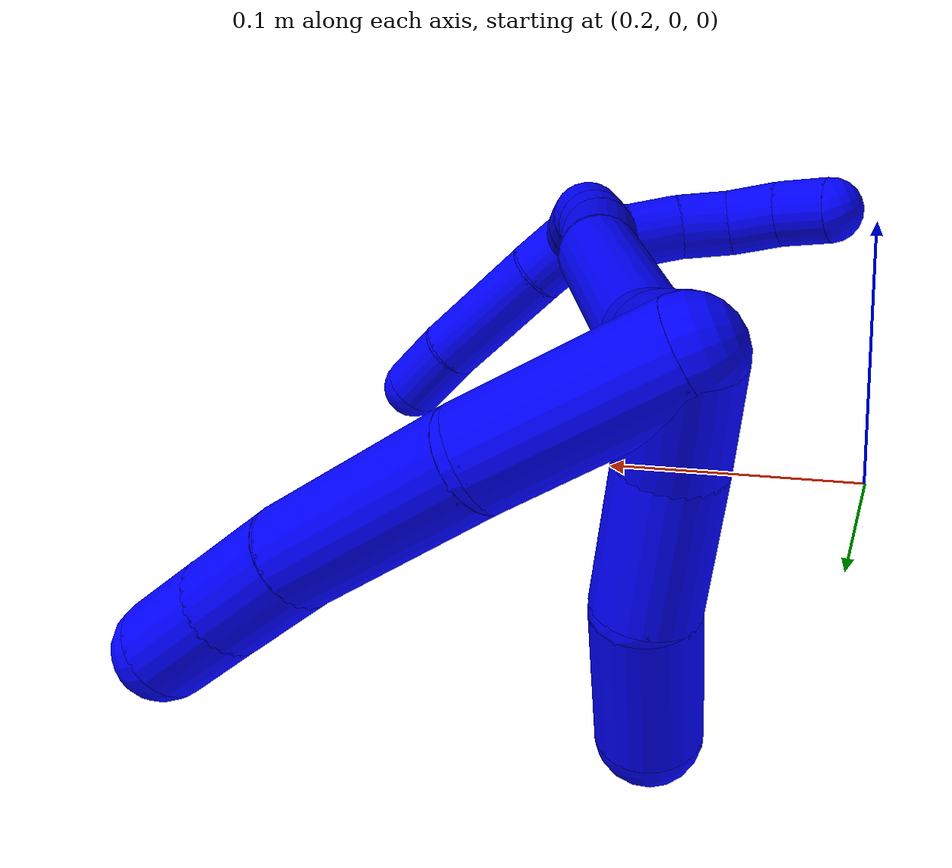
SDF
<sdf version="1.7">
 <world name="default">
  <model name="1">
   <static>0</static>
   <link name="1">
    <collision name="collision-cylinder-e_1_2_8">
     <pose>-0.001913 -0.002784 -0.024297 3.02752 -0.078078 -1.19988</pose>
     <geometry><cylinder><radius>0.0125</radius><length>0.049061</length></cylinder></geometry>
     <surface>
      <friction><ode><mu>1.16</mu><mu2>1.16</mu2><slip1>0</slip1><slip2>0</slip2></ode></friction>
      <contact><ode><kp>1e+06</kp><kd>1</kd><max_vel>0</max_vel><min_depth>0.001</min_depth></ode></contact>
     </surface>
    </collision>
    <visual name="visual-cylinder-e_1_2_8">
     <pose>-0.001913 -0.002784 -0.024297 3.02752 -0.078078 -1.19988</pose>
     <geometry><cylinder><radius>0.0125</radius><length>0.049061</length></cylinder></geometry>
     <material><ambient>0 0 1 1</ambient></material>
    </visual>
    <collision name="collision-cylinder-e_2_8_9">
     <pose>-0.006993 -0.014691 -0.073216 2.78672 -0.120001 -0.6465</pose>
     <geometry><cylinder><radius>0.0125</radius><length>0.052896</length></cylinder></geometry>
     <surface>
      <friction><ode><mu>1.16</mu><mu2>1.16</mu2><slip1>0</slip1><slip2>0</slip2></ode></friction>
      <contact><ode><kp>1e+06</kp><kd>1</kd><max_vel>0</max_vel><min_depth>0.001</min_depth></ode></contact>
     </surface>
    </collision>
    <visual name="visual-cylinder-e_2_8_9">
     <pose>-0.006993 -0.014691 -0.073216 2.78672 -0.120001 -0.6465</pose>
     <geometry><cylinder><radius>0.0125</radius><length>0.052896</length></cylinder></geometry>
     <material><ambient>0 0 1 1</ambient></material>
    </visual>
    <collision name="collision-cylinder-e_3_9_10">
     <pose>-0.012757 -0.028419 -0.109449 2.76414 -0.205064 -0.988256</pose>
     <geometry><cylinder><radius>0.0125</radius><length>0.025516</length></cylinder></geometry>
     <surface>
      <friction><ode><mu>1.16</mu><mu2>1.16</mu2><slip1>0</slip1><slip2>0</slip2></ode></friction>
      <contact><ode><kp>1e+06</kp><kd>1</kd><max_vel>0</max_vel><min_depth>0.001</min_depth></ode></contact>
     </surface>
    </collision>
    <visual name="visual-cylinder-e_3_9_10">
     <pose>-0.012757 -0.028419 -0.109449 2.76414 -0.205064 -0.988256</pose>
     <geometry><cylinder><radius>0.0125</radius><length>0.025516</length></cylinder></geometry>
     <material><ambient>0 0 1 1</ambient></material>
    </visual>
    <collision name="collision-cylinder-e_4_10_6">
     <pose>-0.017766 -0.036561 -0.131478 2.81415 -0.215697 -1.1603</pose>
     <geometry><cylinder><radius>0.0125</radius><length>0.022526</length></cylinder></geometry>
     <surface>
      <friction><ode><mu>1.16</mu><mu2>1.16</mu2><slip1>0</slip1><slip2>0</slip2></ode></friction>
      <contact><ode><kp>1e+06</kp><kd>1</kd><max_vel>0</max_vel><min_depth>0.001</min_depth></ode></contact>
     </surface>
    </collision>
    <visual name="visual-cylinder-e_4_10_6">
     <pose>-0.017766 -0.036561 -0.131478 2.81415 -0.215697 -1.1603</pose>
     <geometry><cylinder><radius>0.0125</radius><length>0.022526</length></cylinder></geometry>
     <material><ambient>0 0 1 1</ambient></material>
    </visual>
    <collision name="collision-cylinder-e_1_2_11">
     <pose>-0.009923 -0.006901 -0.006093 2.29412 -0.822853 -1.5376</pose>
     <geometry><cylinder><radius>0.0125</radius><length>0.027071</length></cylinder></geometry>
     <surface>
      <friction><ode><mu>1.16</mu><mu2>1.16</mu2><slip1>0</slip1><slip2>0</slip2></ode></friction>
      <contact><ode><kp>1e+06</kp><kd>1</kd><max_vel>0</max_vel><min_depth>0.001</min_depth></ode></contact>
     </surface>
    </collision>
    <visual name="visual-cylinder-e_1_2_11">
     <pose>-0.009923 -0.006901 -0.006093 2.29412 -0.822853 -1.5376</pose>
     <geometry><cylinder><radius>0.0125</radius><length>0.027071</length></cylinder></geometry>
     <material><ambient>0 0 1 1</ambient></material>
    </visual>
    <collision name="collision-cylinder-e_2_11_12">
     <pose>-0.033801 -0.019703 -0.021199 2.56185 -0.913427 -2.05045</pose>
     <geometry><cylinder><radius>0.0125</radius><length>0.035259</length></cylinder></geometry>
     <surface>
      <friction><ode><mu>1.16</mu><mu2>1.16</mu2><slip1>0</slip1><slip2>0</slip2></ode></friction>
      <contact><ode><kp>1e+06</kp><kd>1</kd><max_vel>0</max_vel><min_depth>0.001</min_depth></ode></contact>
     </surface>
    </collision>
    <visual name="visual-cylinder-e_2_11_12">
     <pose>-0.033801 -0.019703 -0.021199 2.56185 -0.913427 -2.05045</pose>
     <geometry><cylinder><radius>0.0125</radius><length>0.035259</length></cylinder></geometry>
     <material><ambient>0 0 1 1</ambient></material>
    </visual>
    <collision name="collision-cylinder-e_3_12_5">
     <pose>-0.062722 -0.035056 -0.03665 2.16886 -0.918219 -1.50359</pose>
     <geometry><cylinder><radius>0.0125</radius><length>0.03767</length></cylinder></geometry>
     <surface>
      <friction><ode><mu>1.16</mu><mu2>1.16</mu2><slip1>0</slip1><slip2>0</slip2></ode></friction>
      <contact><ode><kp>1e+06</kp><kd>1</kd><max_vel>0</max_vel><min_depth>0.001</min_depth></ode></contact>
     </surface>
    </collision>
    <visual name="visual-cylinder-e_3_12_5">
     <pose>-0.062722 -0.035056 -0.03665 2.16886 -0.918219 -1.50359</pose>
     <geometry><cylinder><radius>0.0125</radius><length>0.03767</length></cylinder></geometry>
     <material><ambient>0 0 1 1</ambient></material>
    </visual>
    <collision name="collision-cylinder-e_1_2_13">
     <pose>0.001744 -0.027111 -0.004319 1.72878 0.063452 0.074352</pose>
     <geometry><cylinder><radius>0.0125</radius><length>0.055017</length></cylinder></geometry>
     <surface>
      <friction><ode><mu>1.16</mu><mu2>1.16</mu2><slip1>0</slip1><slip2>0</slip2></ode></friction>
      <contact><ode><kp>1e+06</kp><kd>1</kd><max_vel>0</max_vel><min_depth>0.001</min_depth></ode></contact>
     </surface>
    </collision>
    <visual name="visual-cylinder-e_1_2_13">
     <pose>0.001744 -0.027111 -0.004319 1.72878 0.063452 0.074352</pose>
     <geometry><cylinder><radius>0.0125</radius><length>0.055017</length></cylinder></geometry>
     <material><ambient>0 0 1 1</ambient></material>
    </visual>
    <collision name="collision-cylinder-e_2_13_14">
     <pose>0.004691 -0.072206 -0.011495 1.72832 0.065958 0.077251</pose>
     <geometry><cylinder><radius>0.0125</radius><length>0.036496</length></cylinder></geometry>
     <surface>
      <friction><ode><mu>1.16</mu><mu2>1.16</mu2><slip1>0</slip1><slip2>0</slip2></ode></friction>
      <contact><ode><kp>1e+06</kp><kd>1</kd><max_vel>0</max_vel><min_depth>0.001</min_depth></ode></contact>
     </surface>
    </collision>
    <visual name="visual-cylinder-e_2_13_14">
     <pose>0.004691 -0.072206 -0.011495 1.72832 0.065958 0.077251</pose>
     <geometry><cylinder><radius>0.0125</radius><length>0.036496</length></cylinder></geometry>
     <material><ambient>0 0 1 1</ambient></material>
    </visual>
    <collision name="collision-cylinder-e_3_14_15">
     <pose>0.019963 -0.125635 -0.020031 1.72968 0.373512 0.436239</pose>
     <geometry><cylinder><radius>0.0125</radius><length>0.077113</length></cylinder></geometry>
     <surface>
      <friction><ode><mu>1.16</mu><mu2>1.16</mu2><slip1>0</slip1><slip2>0</slip2></ode></friction>
      <contact><ode><kp>1e+06</kp><kd>1</kd><max_vel>0</max_vel><min_depth>0.001</min_depth></ode></contact>
     </surface>
    </collision>
    <visual name="visual-cylinder-e_3_14_15">
     <pose>0.019963 -0.125635 -0.020031 1.72968 0.373512 0.436239</pose>
     <geometry><cylinder><radius>0.0125</radius><length>0.077113</length></cylinder></geometry>
     <material><ambient>0 0 1 1</ambient></material>
    </visual>
    <collision name="collision-cylinder-e_4_15_16">
     <pose>0.038739 -0.18586 -0.026982 1.62203 0.187485 0.197284</pose>
     <geometry><cylinder><radius>0.0125</radius><length>0.050509</length></cylinder></geometry>
     <surface>
      <friction><ode><mu>1.16</mu><mu2>1.16</mu2><slip1>0</slip1><slip2>0</slip2></ode></friction>
      <contact><ode><kp>1e+06</kp><kd>1</kd><max_vel>0</max_vel><min_depth>0.001</min_depth></ode></contact>
     </surface>
    </collision>
    <visual name="visual-cylinder-e_4_15_16">
     <pose>0.038739 -0.18586 -0.026982 1.62203 0.187485 0.197284</pose>
     <geometry><cylinder><radius>0.0125</radius><length>0.050509</length></cylinder></geometry>
     <material><ambient>0 0 1 1</ambient></material>
    </visual>
    <collision name="collision-cylinder-e_5_16_17">
     <pose>0.045986 -0.220297 -0.029457 1.69492 0.255289 0.288677</pose>
     <geometry><cylinder><radius>0.0125</radius><length>0.020117</length></cylinder></geometry>
     <surface>
      <friction><ode><mu>1.16</mu><mu2>1.16</mu2><slip1>0</slip1><slip2>0</slip2></ode></friction>
      <contact><ode><kp>1e+06</kp><kd>1</kd><max_vel>0</max_vel><min_depth>0.001</min_depth></ode></contact>
     </surface>
    </collision>
    <visual name="visual-cylinder-e_5_16_17">
     <pose>0.045986 -0.220297 -0.029457 1.69492 0.255289 0.288677</pose>
     <geometry><cylinder><radius>0.0125</radius><length>0.020117</length></cylinder></geometry>
     <material><ambient>0 0 1 1</ambient></material>
    </visual>
    <collision name="collision-cylinder-e_6_17_18">
     <pose>0.051205 -0.239721 -0.032138 1.72079 0.264814 0.307214</pose>
     <geometry><cylinder><radius>0.0125</radius><length>0.020467</length></cylinder></geometry>
     <surface>
      <friction><ode><mu>1.16</mu><mu2>1.16</mu2><slip1>0</slip1><slip2>0</slip2></ode></friction>
      <contact><ode><kp>1e+06</kp><kd>1</kd><max_vel>0</max_vel><min_depth>0.001</min_depth></ode></contact>
     </surface>
    </collision>
    <visual name="visual-cylinder-e_6_17_18">
     <pose>0.051205 -0.239721 -0.032138 1.72079 0.264814 0.307214</pose>
     <geometry><cylinder><radius>0.0125</radius><length>0.020467</length></cylinder></geometry>
     <material><ambient>0 0 1 1</ambient></material>
    </visual>
    <collision name="collision-cylinder-e_7_18_19">
     <pose>0.053534 -0.259222 -0.036307 1.84071 -0.034579 -0.045441</pose>
     <geometry><cylinder><radius>0.0125</radius><length>0.020214</length></cylinder></geometry>
     <surface>
      <friction><ode><mu>1.16</mu><mu2>1.16</mu2><slip1>0</slip1><slip2>0</slip2></ode></friction>
      <contact><ode><kp>1e+06</kp><kd>1</kd><max_vel>0</max_vel><min_depth>0.001</min_depth></ode></contact>
     </surface>
    </collision>
    <visual name="visual-cylinder-e_7_18_19">
     <pose>0.053534 -0.259222 -0.036307 1.84071 -0.034579 -0.045441</pose>
     <geometry><cylinder><radius>0.0125</radius><length>0.020214</length></cylinder></geometry>
     <material><ambient>0 0 1 1</ambient></material>
    </visual>
    <collision name="collision-cylinder-e_8_19_1">
     <pose>0.052372 -0.278627 -0.041551 1.82868 -0.08099 -0.105082</pose>
     <geometry><cylinder><radius>0.0125</radius><length>0.020066</length></cylinder></geometry>
     <surface>
      <friction><ode><mu>1.16</mu><mu2>1.16</mu2><slip1>0</slip1><slip2>0</slip2></ode></friction>
      <contact><ode><kp>1e+06</kp><kd>1</kd><max_vel>0</max_vel><min_depth>0.001</min_depth></ode></contact>
     </surface>
    </collision>
    <visual name="visual-cylinder-e_8_19_1">
     <pose>0.052372 -0.278627 -0.041551 1.82868 -0.08099 -0.105082</pose>
     <geometry><cylinder><radius>0.0125</radius><length>0.020066</length></cylinder></geometry>
     <material><ambient>0 0 1 1</ambient></material>
    </visual>
    <collision name="collision-cylinder-e_1_1_20">
     <pose>0.048452 -0.290526 -0.054448 2.92933 -0.285712 -1.86664</pose>
     <geometry><cylinder><radius>0.0125</radius><length>0.022063</length></cylinder></geometry>
     <surface>
      <friction><ode><mu>1.16</mu><mu2>1.16</mu2><slip1>0</slip1><slip2>0</slip2></ode></friction>
      <contact><ode><kp>1e+06</kp><kd>1</kd><max_vel>0</max_vel><min_depth>0.001</min_depth></ode></contact>
     </surface>
    </collision>
    <visual name="visual-cylinder-e_1_1_20">
     <pose>0.048452 -0.290526 -0.054448 2.92933 -0.285712 -1.86664</pose>
     <geometry><cylinder><radius>0.0125</radius><length>0.022063</length></cylinder></geometry>
     <material><ambient>0 0 1 1</ambient></material>
    </visual>
    <collision name="collision-cylinder-e_2_20_21">
     <pose>0.038033 -0.300518 -0.088229 2.82171 -0.287879 -1.46396</pose>
     <geometry><cylinder><radius>0.0125</radius><length>0.051491</length></cylinder></geometry>
     <surface>
      <friction><ode><mu>1.16</mu><mu2>1.16</mu2><slip1>0</slip1><slip2>0</slip2></ode></friction>
      <contact><ode><kp>1e+06</kp><kd>1</kd><max_vel>0</max_vel><min_depth>0.001</min_depth></ode></contact>
     </surface>
    </collision>
    <visual name="visual-cylinder-e_2_20_21">
     <pose>0.038033 -0.300518 -0.088229 2.82171 -0.287879 -1.46396</pose>
     <geometry><cylinder><radius>0.0125</radius><length>0.051491</length></cylinder></geometry>
     <material><ambient>0 0 1 1</ambient></material>
    </visual>
    <collision name="collision-cylinder-e_3_21_4">
     <pose>0.026478 -0.313448 -0.12307 2.7163 -0.326831 -1.30439</pose>
     <geometry><cylinder><radius>0.0125</radius><length>0.026446</length></cylinder></geometry>
     <surface>
      <friction><ode><mu>1.16</mu><mu2>1.16</mu2><slip1>0</slip1><slip2>0</slip2></ode></friction>
      <contact><ode><kp>1e+06</kp><kd>1</kd><max_vel>0</max_vel><min_depth>0.001</min_depth></ode></contact>
     </surface>
    </collision>
    <visual name="visual-cylinder-e_3_21_4">
     <pose>0.026478 -0.313448 -0.12307 2.7163 -0.326831 -1.30439</pose>
     <geometry><cylinder><radius>0.0125</radius><length>0.026446</length></cylinder></geometry>
     <material><ambient>0 0 1 1</ambient></material>
    </visual>
    <collision name="collision-cylinder-e_1_1_22">
     <pose>0.048051 -0.290622 -0.035031 0.250983 -0.358647 -0.045728</pose>
     <geometry><cylinder><radius>0.0125</radius><length>0.02</length></cylinder></geometry>
     <surface>
      <friction><ode><mu>1.16</mu><mu2>1.16</mu2><slip1>0</slip1><slip2>0</slip2></ode></friction>
      <contact><ode><kp>1e+06</kp><kd>1</kd><max_vel>0</max_vel><min_depth>0.001</min_depth></ode></contact>
     </surface>
    </collision>
    <visual name="visual-cylinder-e_1_1_22">
     <pose>0.048051 -0.290622 -0.035031 0.250983 -0.358647 -0.045728</pose>
     <geometry><cylinder><radius>0.0125</radius><length>0.02</length></cylinder></geometry>
     <material><ambient>0 0 1 1</ambient></material>
    </visual>
    <collision name="collision-cylinder-e_2_22_23">
     <pose>0.042765 -0.295601 -0.016484 0.273066 -0.178534 -0.024592</pose>
     <geometry><cylinder><radius>0.0125</radius><length>0.02</length></cylinder></geometry>
     <surface>
      <friction><ode><mu>1.16</mu><mu2>1.16</mu2><slip1>0</slip1><slip2>0</slip2></ode></friction>
      <contact><ode><kp>1e+06</kp><kd>1</kd><max_vel>0</max_vel><min_depth>0.001</min_depth></ode></contact>
     </surface>
    </collision>
    <visual name="visual-cylinder-e_2_22_23">
     <pose>0.042765 -0.295601 -0.016484 0.273066 -0.178534 -0.024592</pose>
     <geometry><cylinder><radius>0.0125</radius><length>0.02</length></cylinder></geometry>
     <material><ambient>0 0 1 1</ambient></material>
    </visual>
    <collision name="collision-cylinder-e_3_23_24">
     <pose>0.038024 -0.299253 0.00249 0.104696 -0.300981 -0.01589</pose>
     <geometry><cylinder><radius>0.0125</radius><length>0.02</length></cylinder></geometry>
     <surface>
      <friction><ode><mu>1.16</mu><mu2>1.16</mu2><slip1>0</slip1><slip2>0</slip2></ode></friction>
      <contact><ode><kp>1e+06</kp><kd>1</kd><max_vel>0</max_vel><min_depth>0.001</min_depth></ode></contact>
     </surface>
    </collision>
    <visual name="visual-cylinder-e_3_23_24">
     <pose>0.038024 -0.299253 0.00249 0.104696 -0.300981 -0.01589</pose>
     <geometry><cylinder><radius>0.0125</radius><length>0.02</length></cylinder></geometry>
     <material><ambient>0 0 1 1</ambient></material>
    </visual>
    <collision name="collision-cylinder-e_4_24_25">
     <pose>0.032899 -0.298339 0.021563 -0.197096 -0.217836 0.021622</pose>
     <geometry><cylinder><radius>0.0125</radius><length>0.02</length></cylinder></geometry>
     <surface>
      <friction><ode><mu>1.16</mu><mu2>1.16</mu2><slip1>0</slip1><slip2>0</slip2></ode></friction>
      <contact><ode><kp>1e+06</kp><kd>1</kd><max_vel>0</max_vel><min_depth>0.001</min_depth></ode></contact>
     </surface>
    </collision>
    <visual name="visual-cylinder-e_4_24_25">
     <pose>0.032899 -0.298339 0.021563 -0.197096 -0.217836 0.021622</pose>
     <geometry><cylinder><radius>0.0125</radius><length>0.02</length></cylinder></geometry>
     <material><ambient>0 0 1 1</ambient></material>
    </visual>
    <collision name="collision-cylinder-e_5_25_3">
     <pose>0.027695 -0.293242 0.040115 -0.340969 -0.309153 0.053638</pose>
     <geometry><cylinder><radius>0.0125</radius><length>0.02</length></cylinder></geometry>
     <surface>
      <friction><ode><mu>1.16</mu><mu2>1.16</mu2><slip1>0</slip1><slip2>0</slip2></ode></friction>
      <contact><ode><kp>1e+06</kp><kd>1</kd><max_vel>0</max_vel><min_depth>0.001</min_depth></ode></contact>
     </surface>
    </collision>
    <visual name="visual-cylinder-e_5_25_3">
     <pose>0.027695 -0.293242 0.040115 -0.340969 -0.309153 0.053638</pose>
     <geometry><cylinder><radius>0.0125</radius><length>0.02</length></cylinder></geometry>
     <material><ambient>0 0 1 1</ambient></material>
    </visual>
    <collision name="collision-sphere-3">
     <pose>0.024652 -0.290057 0.049093 0 -0 0</pose>
     <geometry><sphere><radius>0.0125</radius></sphere></geometry>
     <surface>
      <friction><ode><mu>1.16</mu><mu2>1.16</mu2><slip1>0</slip1><slip2>0</slip2></ode></friction>
      <contact><ode><kp>1e+06</kp><kd>1</kd><max_vel>0</max_vel><min_depth>0.001</min_depth></ode></contact>
     </surface>
    </collision>
    <visual name="visual-sphere-3">
     <pose>0.024652 -0.290057 0.049093 0 -0 0</pose>
     <geometry><sphere><radius>0.0125</radius></sphere></geometry>
     <material><ambient>0 0 1 1</ambient></material>
    </visual>
    <collision name="collision-sphere-25">
     <pose>0.030737 -0.296427 0.031138 0 -0 0</pose>
     <geometry><sphere><radius>0.0125</radius></sphere></geometry>
     <surface>
      <friction><ode><mu>1.16</mu><mu2>1.16</mu2><slip1>0</slip1><slip2>0</slip2></ode></friction>
      <contact><ode><kp>1e+06</kp><kd>1</kd><max_vel>0</max_vel><min_depth>0.001</min_depth></ode></contact>
     </surface>
    </collision>
    <visual name="visual-sphere-25">
     <pose>0.030737 -0.296427 0.031138 0 -0 0</pose>
     <geometry><sphere><radius>0.0125</radius></sphere></geometry>
     <material><ambient>0 0 1 1</ambient></material>
    </visual>
    <collision name="collision-sphere-24">
     <pose>0.03506 -0.300251 0.011988 0 -0 0</pose>
     <geometry><sphere><radius>0.0125</radius></sphere></geometry>
     <surface>
      <friction><ode><mu>1.16</mu><mu2>1.16</mu2><slip1>0</slip1><slip2>0</slip2></ode></friction>
      <contact><ode><kp>1e+06</kp><kd>1</kd><max_vel>0</max_vel><min_depth>0.001</min_depth></ode></contact>
     </surface>
    </collision>
    <visual name="visual-sphere-24">
     <pose>0.03506 -0.300251 0.011988 0 -0 0</pose>
     <geometry><sphere><radius>0.0125</radius></sphere></geometry>
     <material><ambient>0 0 1 1</ambient></material>
    </visual>
    <collision name="collision-sphere-23">
     <pose>0.040989 -0.298255 -0.007008 0 -0 0</pose>
     <geometry><sphere><radius>0.0125</radius></sphere></geometry>
     <surface>
      <friction><ode><mu>1.16</mu><mu2>1.16</mu2><slip1>0</slip1><slip2>0</slip2></ode></friction>
      <contact><ode><kp>1e+06</kp><kd>1</kd><max_vel>0</max_vel><min_depth>0.001</min_depth></ode></contact>
     </surface>
    </collision>
    <visual name="visual-sphere-23">
     <pose>0.040989 -0.298255 -0.007008 0 -0 0</pose>
     <geometry><sphere><radius>0.0125</radius></sphere></geometry>
     <material><ambient>0 0 1 1</ambient></material>
    </visual>
    <collision name="collision-sphere-22">
     <pose>0.044541 -0.292947 -0.025961 0 -0 0</pose>
     <geometry><sphere><radius>0.0125</radius></sphere></geometry>
     <surface>
      <friction><ode><mu>1.16</mu><mu2>1.16</mu2><slip1>0</slip1><slip2>0</slip2></ode></friction>
      <contact><ode><kp>1e+06</kp><kd>1</kd><max_vel>0</max_vel><min_depth>0.001</min_depth></ode></contact>
     </surface>
    </collision>
    <visual name="visual-sphere-22">
     <pose>0.044541 -0.292947 -0.025961 0 -0 0</pose>
     <geometry><sphere><radius>0.0125</radius></sphere></geometry>
     <material><ambient>0 0 1 1</ambient></material>
    </visual>
    <collision name="collision-sphere-4">
     <pose>0.022233 -0.318615 -0.134478 0 -0 0</pose>
     <geometry><sphere><radius>0.0125</radius></sphere></geometry>
     <surface>
      <friction><ode><mu>1.16</mu><mu2>1.16</mu2><slip1>0</slip1><slip2>0</slip2></ode></friction>
      <contact><ode><kp>1e+06</kp><kd>1</kd><max_vel>0</max_vel><min_depth>0.001</min_depth></ode></contact>
     </surface>
    </collision>
    <visual name="visual-sphere-4">
     <pose>0.022233 -0.318615 -0.134478 0 -0 0</pose>
     <geometry><sphere><radius>0.0125</radius></sphere></geometry>
     <material><ambient>0 0 1 1</ambient></material>
    </visual>
    <collision name="collision-sphere-21">
     <pose>0.030723 -0.308281 -0.111663 0 -0 0</pose>
     <geometry><sphere><radius>0.0125</radius></sphere></geometry>
     <surface>
      <friction><ode><mu>1.16</mu><mu2>1.16</mu2><slip1>0</slip1><slip2>0</slip2></ode></friction>
      <contact><ode><kp>1e+06</kp><kd>1</kd><max_vel>0</max_vel><min_depth>0.001</min_depth></ode></contact>
     </surface>
    </collision>
    <visual name="visual-sphere-21">
     <pose>0.030723 -0.308281 -0.111663 0 -0 0</pose>
     <geometry><sphere><radius>0.0125</radius></sphere></geometry>
     <material><ambient>0 0 1 1</ambient></material>
    </visual>
    <collision name="collision-sphere-20">
     <pose>0.045342 -0.292756 -0.064795 0 -0 0</pose>
     <geometry><sphere><radius>0.0125</radius></sphere></geometry>
     <surface>
      <friction><ode><mu>1.16</mu><mu2>1.16</mu2><slip1>0</slip1><slip2>0</slip2></ode></friction>
      <contact><ode><kp>1e+06</kp><kd>1</kd><max_vel>0</max_vel><min_depth>0.001</min_depth></ode></contact>
     </surface>
    </collision>
    <visual name="visual-sphere-20">
     <pose>0.045342 -0.292756 -0.064795 0 -0 0</pose>
     <geometry><sphere><radius>0.0125</radius></sphere></geometry>
     <material><ambient>0 0 1 1</ambient></material>
    </visual>
    <collision name="collision-sphere-11">
     <pose>-0.019846 -0.013802 -0.012187 0 -0 0</pose>
     <geometry><sphere><radius>0.0125</radius></sphere></geometry>
     <surface>
      <friction><ode><mu>1.16</mu><mu2>1.16</mu2><slip1>0</slip1><slip2>0</slip2></ode></friction>
      <contact><ode><kp>1e+06</kp><kd>1</kd><max_vel>0</max_vel><min_depth>0.001</min_depth></ode></contact>
     </surface>
    </collision>
    <visual name="visual-sphere-11">
     <pose>-0.019846 -0.013802 -0.012187 0 -0 0</pose>
     <geometry><sphere><radius>0.0125</radius></sphere></geometry>
     <material><ambient>0 0 1 1</ambient></material>
    </visual>
    <collision name="collision-sphere-6">
     <pose>-0.020176 -0.040099 -0.141896 0 -0 0</pose>
     <geometry><sphere><radius>0.0125</radius></sphere></geometry>
     <surface>
      <friction><ode><mu>1.16</mu><mu2>1.16</mu2><slip1>0</slip1><slip2>0</slip2></ode></friction>
      <contact><ode><kp>1e+06</kp><kd>1</kd><max_vel>0</max_vel><min_depth>0.001</min_depth></ode></contact>
     </surface>
    </collision>
    <visual name="visual-sphere-6">
     <pose>-0.020176 -0.040099 -0.141896 0 -0 0</pose>
     <geometry><sphere><radius>0.0125</radius></sphere></geometry>
     <material><ambient>0 0 1 1</ambient></material>
    </visual>
    <collision name="collision-sphere-10">
     <pose>-0.015355 -0.033022 -0.121061 0 -0 0</pose>
     <geometry><sphere><radius>0.0125</radius></sphere></geometry>
     <surface>
      <friction><ode><mu>1.16</mu><mu2>1.16</mu2><slip1>0</slip1><slip2>0</slip2></ode></friction>
      <contact><ode><kp>1e+06</kp><kd>1</kd><max_vel>0</max_vel><min_depth>0.001</min_depth></ode></contact>
     </surface>
    </collision>
    <visual name="visual-sphere-10">
     <pose>-0.015355 -0.033022 -0.121061 0 -0 0</pose>
     <geometry><sphere><radius>0.0125</radius></sphere></geometry>
     <material><ambient>0 0 1 1</ambient></material>
    </visual>
    <collision name="collision-sphere-9">
     <pose>-0.010159 -0.023815 -0.097837 0 -0 0</pose>
     <geometry><sphere><radius>0.0125</radius></sphere></geometry>
     <surface>
      <friction><ode><mu>1.16</mu><mu2>1.16</mu2><slip1>0</slip1><slip2>0</slip2></ode></friction>
      <contact><ode><kp>1e+06</kp><kd>1</kd><max_vel>0</max_vel><min_depth>0.001</min_depth></ode></contact>
     </surface>
    </collision>
    <visual name="visual-sphere-9">
     <pose>-0.010159 -0.023815 -0.097837 0 -0 0</pose>
     <geometry><sphere><radius>0.0125</radius></sphere></geometry>
     <material><ambient>0 0 1 1</ambient></material>
    </visual>
    <collision name="collision-sphere-2">
     <geometry><sphere><radius>0.0125</radius></sphere></geometry>
     <surface>
      <friction><ode><mu>1.16</mu><mu2>1.16</mu2><slip1>0</slip1><slip2>0</slip2></ode></friction>
      <contact><ode><kp>1e+06</kp><kd>1</kd><max_vel>0</max_vel><min_depth>0.001</min_depth></ode></contact>
     </surface>
    </collision>
    <visual name="visual-sphere-2">
     <geometry><sphere><radius>0.0125</radius></sphere></geometry>
     <material><ambient>0 0 1 1</ambient></material>
    </visual>
    <collision name="collision-sphere-19">
     <pose>0.053184 -0.268957 -0.039001 0 -0 0</pose>
     <geometry><sphere><radius>0.0125</radius></sphere></geometry>
     <surface>
      <friction><ode><mu>1.16</mu><mu2>1.16</mu2><slip1>0</slip1><slip2>0</slip2></ode></friction>
      <contact><ode><kp>1e+06</kp><kd>1</kd><max_vel>0</max_vel><min_depth>0.001</min_depth></ode></contact>
     </surface>
    </collision>
    <visual name="visual-sphere-19">
     <pose>0.053184 -0.268957 -0.039001 0 -0 0</pose>
     <geometry><sphere><radius>0.0125</radius></sphere></geometry>
     <material><ambient>0 0 1 1</ambient></material>
    </visual>
    <collision name="collision-sphere-8">
     <pose>-0.003827 -0.005568 -0.048594 0 -0 0</pose>
     <geometry><sphere><radius>0.0125</radius></sphere></geometry>
     <surface>
      <friction><ode><mu>1.16</mu><mu2>1.16</mu2><slip1>0</slip1><slip2>0</slip2></ode></friction>
      <contact><ode><kp>1e+06</kp><kd>1</kd><max_vel>0</max_vel><min_depth>0.001</min_depth></ode></contact>
     </surface>
    </collision>
    <visual name="visual-sphere-8">
     <pose>-0.003827 -0.005568 -0.048594 0 -0 0</pose>
     <geometry><sphere><radius>0.0125</radius></sphere></geometry>
     <material><ambient>0 0 1 1</ambient></material>
    </visual>
    <collision name="collision-sphere-12">
     <pose>-0.047757 -0.025604 -0.030211 0 -0 0</pose>
     <geometry><sphere><radius>0.0125</radius></sphere></geometry>
     <surface>
      <friction><ode><mu>1.16</mu><mu2>1.16</mu2><slip1>0</slip1><slip2>0</slip2></ode></friction>
      <contact><ode><kp>1e+06</kp><kd>1</kd><max_vel>0</max_vel><min_depth>0.001</min_depth></ode></contact>
     </surface>
    </collision>
    <visual name="visual-sphere-12">
     <pose>-0.047757 -0.025604 -0.030211 0 -0 0</pose>
     <geometry><sphere><radius>0.0125</radius></sphere></geometry>
     <material><ambient>0 0 1 1</ambient></material>
    </visual>
    <collision name="collision-sphere-5">
     <pose>-0.077686 -0.044508 -0.04309 0 -0 0</pose>
     <geometry><sphere><radius>0.0125</radius></sphere></geometry>
     <surface>
      <friction><ode><mu>1.16</mu><mu2>1.16</mu2><slip1>0</slip1><slip2>0</slip2></ode></friction>
      <contact><ode><kp>1e+06</kp><kd>1</kd><max_vel>0</max_vel><min_depth>0.001</min_depth></ode></contact>
     </surface>
    </collision>
    <visual name="visual-sphere-5">
     <pose>-0.077686 -0.044508 -0.04309 0 -0 0</pose>
     <geometry><sphere><radius>0.0125</radius></sphere></geometry>
     <material><ambient>0 0 1 1</ambient></material>
    </visual>
    <collision name="collision-sphere-13">
     <pose>0.003489 -0.054223 -0.008638 0 -0 0</pose>
     <geometry><sphere><radius>0.0125</radius></sphere></geometry>
     <surface>
      <friction><ode><mu>1.16</mu><mu2>1.16</mu2><slip1>0</slip1><slip2>0</slip2></ode></friction>
      <contact><ode><kp>1e+06</kp><kd>1</kd><max_vel>0</max_vel><min_depth>0.001</min_depth></ode></contact>
     </surface>
    </collision>
    <visual name="visual-sphere-13">
     <pose>0.003489 -0.054223 -0.008638 0 -0 0</pose>
     <geometry><sphere><radius>0.0125</radius></sphere></geometry>
     <material><ambient>0 0 1 1</ambient></material>
    </visual>
    <collision name="collision-sphere-14">
     <pose>0.005894 -0.090189 -0.014351 0 -0 0</pose>
     <geometry><sphere><radius>0.0125</radius></sphere></geometry>
     <surface>
      <friction><ode><mu>1.16</mu><mu2>1.16</mu2><slip1>0</slip1><slip2>0</slip2></ode></friction>
      <contact><ode><kp>1e+06</kp><kd>1</kd><max_vel>0</max_vel><min_depth>0.001</min_depth></ode></contact>
     </surface>
    </collision>
    <visual name="visual-sphere-14">
     <pose>0.005894 -0.090189 -0.014351 0 -0 0</pose>
     <geometry><sphere><radius>0.0125</radius></sphere></geometry>
     <material><ambient>0 0 1 1</ambient></material>
    </visual>
    <collision name="collision-sphere-15">
     <pose>0.034032 -0.161081 -0.025711 0 -0 0</pose>
     <geometry><sphere><radius>0.0125</radius></sphere></geometry>
     <surface>
      <friction><ode><mu>1.16</mu><mu2>1.16</mu2><slip1>0</slip1><slip2>0</slip2></ode></friction>
      <contact><ode><kp>1e+06</kp><kd>1</kd><max_vel>0</max_vel><min_depth>0.001</min_depth></ode></contact>
     </surface>
    </collision>
    <visual name="visual-sphere-15">
     <pose>0.034032 -0.161081 -0.025711 0 -0 0</pose>
     <geometry><sphere><radius>0.0125</radius></sphere></geometry>
     <material><ambient>0 0 1 1</ambient></material>
    </visual>
    <collision name="collision-sphere-16">
     <pose>0.043446 -0.210639 -0.028252 0 -0 0</pose>
     <geometry><sphere><radius>0.0125</radius></sphere></geometry>
     <surface>
      <friction><ode><mu>1.16</mu><mu2>1.16</mu2><slip1>0</slip1><slip2>0</slip2></ode></friction>
      <contact><ode><kp>1e+06</kp><kd>1</kd><max_vel>0</max_vel><min_depth>0.001</min_depth></ode></contact>
     </surface>
    </collision>
    <visual name="visual-sphere-16">
     <pose>0.043446 -0.210639 -0.028252 0 -0 0</pose>
     <geometry><sphere><radius>0.0125</radius></sphere></geometry>
     <material><ambient>0 0 1 1</ambient></material>
    </visual>
    <collision name="collision-sphere-17">
     <pose>0.048526 -0.229955 -0.030662 0 -0 0</pose>
     <geometry><sphere><radius>0.0125</radius></sphere></geometry>
     <surface>
      <friction><ode><mu>1.16</mu><mu2>1.16</mu2><slip1>0</slip1><slip2>0</slip2></ode></friction>
      <contact><ode><kp>1e+06</kp><kd>1</kd><max_vel>0</max_vel><min_depth>0.001</min_depth></ode></contact>
     </surface>
    </collision>
    <visual name="visual-sphere-17">
     <pose>0.048526 -0.229955 -0.030662 0 -0 0</pose>
     <geometry><sphere><radius>0.0125</radius></sphere></geometry>
     <material><ambient>0 0 1 1</ambient></material>
    </visual>
    <collision name="collision-sphere-18">
     <pose>0.053883 -0.249487 -0.033614 0 -0 0</pose>
     <geometry><sphere><radius>0.0125</radius></sphere></geometry>
     <surface>
      <friction><ode><mu>1.16</mu><mu2>1.16</mu2><slip1>0</slip1><slip2>0</slip2></ode></friction>
      <contact><ode><kp>1e+06</kp><kd>1</kd><max_vel>0</max_vel><min_depth>0.001</min_depth></ode></contact>
     </surface>
    </collision>
    <visual name="visual-sphere-18">
     <pose>0.053883 -0.249487 -0.033614 0 -0 0</pose>
     <geometry><sphere><radius>0.0125</radius></sphere></geometry>
     <material><ambient>0 0 1 1</ambient></material>
    </visual>
    <collision name="collision-sphere-1">
     <pose>0.051561 -0.288296 -0.044101 0 -0 0</pose>
     <geometry><sphere><radius>0.0125</radius></sphere></geometry>
     <surface>
      <friction><ode><mu>1.16</mu><mu2>1.16</mu2><slip1>0</slip1><slip2>0</slip2></ode></friction>
      <contact><ode><kp>1e+06</kp><kd>1</kd><max_vel>0</max_vel><min_depth>0.001</min_depth></ode></contact>
     </surface>
    </collision>
    <visual name="visual-sphere-1">
     <pose>0.051561 -0.288296 -0.044101 0 -0 0</pose>
     <geometry><sphere><radius>0.0125</radius></sphere></geometry>
     <material><ambient>0 0 1 1</ambient></material>
    </visual>
    <inertial>
     <pose>0.013831 -0.143667 -0.037655 0 -0 0</pose>
     <mass>0.75</mass>
     <inertia><ixx>6.4e-05</ixx><ixy>0</ixy><ixz>0</ixz><iyy>-6.3e-05</iyy><iyz>0</iyz><izz>8.1e-05</izz></inertia>
    </inertial>
   </link>
   <pose>0.220964 0.278478 0.106294 0.385502 -1.13881 -0.241616</pose>
  </model>
 </world>
</sdf>
